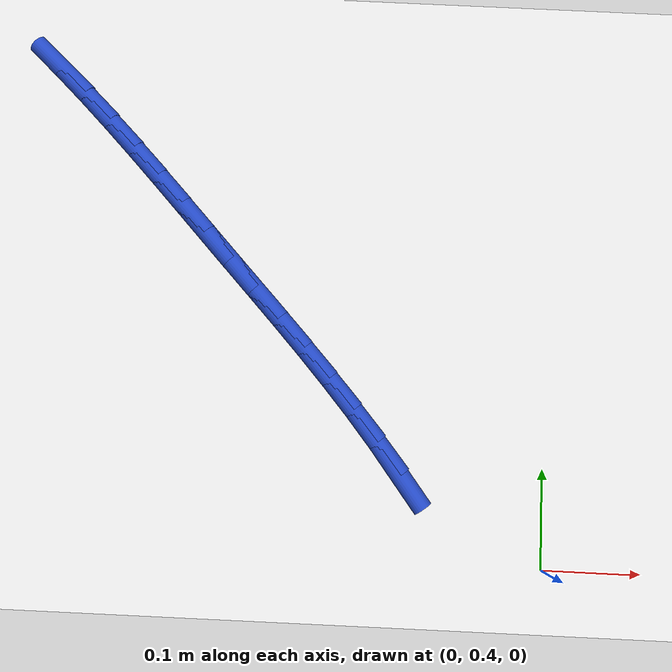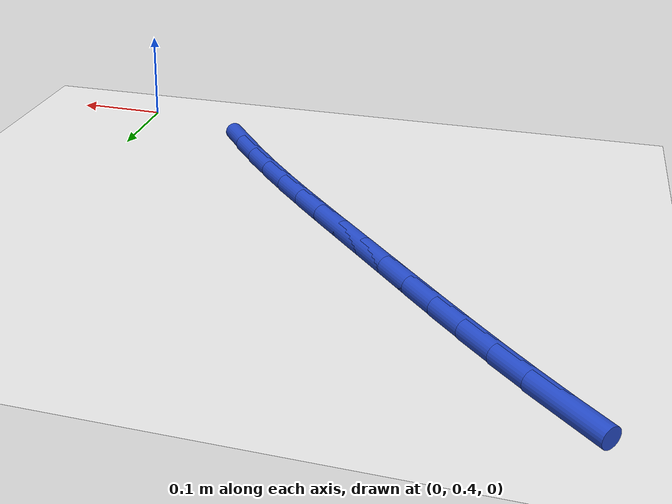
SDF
<sdf version="1.6">
 <world name="default">
  <model name="ground_plane">
   <static>1</static>
   <link name="link">
    <collision name="collision">
     <geometry><plane><normal>0 0 1</normal><size>100 100</size></plane></geometry>
     <surface><friction><ode><mu>100</mu><mu2>50</mu2></ode></friction></surface>
    </collision>
    <visual name="visual">
     <cast_shadows>0</cast_shadows>
     <geometry><plane><normal>0 0 1</normal><size>100 100</size></plane></geometry>
     <material>
      <script><uri>file://media/materials/scripts/gazebo.material</uri><name>Gazebo/WhiteGlow</name></script>
     </material>
    </visual>
   </link>
  </model>
  <model name="line">
   <link name="link_13">
    <pose>-0.14518985217062316 0.4872904489630595 0.01 0 1.57 -0.9235560374310187</pose>
    <collision name="collision">
     <geometry><cylinder><radius>0.01</radius><length>0.08</length></cylinder></geometry>
    </collision>
    <visual name="visual">
     <material>
      <script><name>Gazebo/Blue</name><uri>file://media/materials/scripts/gazebo.material</uri></script>
     </material>
     <geometry><cylinder><radius>0.01</radius><length>0.08</length></cylinder></geometry>
    </visual>
   </link>
   <link name="link_14">
    <pose>-0.16930252687581446 0.5191914741722615 0.01 0 1.57 -0.8915318988918951</pose>
    <collision name="collision">
     <geometry><cylinder><radius>0.01</radius><length>0.08</length></cylinder></geometry>
    </collision>
    <visual name="visual">
     <material>
      <script><name>Gazebo/Blue</name><uri>file://media/materials/scripts/gazebo.material</uri></script>
     </material>
     <geometry><cylinder><radius>0.01</radius><length>0.08</length></cylinder></geometry>
    </visual>
   </link>
   <link name="link_15">
    <pose>-0.1945334963635967 0.5504393653837367 0.01 0 1.57 -0.86547544677018</pose>
    <collision name="collision">
     <geometry><cylinder><radius>0.01</radius><length>0.08</length></cylinder></geometry>
    </collision>
    <visual name="visual">
     <material>
      <script><name>Gazebo/Blue</name><uri>file://media/materials/scripts/gazebo.material</uri></script>
     </material>
     <geometry><cylinder><radius>0.01</radius><length>0.08</length></cylinder></geometry>
    </visual>
   </link>
   <link name="link_16">
    <pose>-0.22065387593070884 0.5811177852950588 0.01 0 1.57 -0.8452090604143787</pose>
    <collision name="collision">
     <geometry><cylinder><radius>0.01</radius><length>0.08</length></cylinder></geometry>
    </collision>
    <visual name="visual">
     <material>
      <script><name>Gazebo/Blue</name><uri>file://media/materials/scripts/gazebo.material</uri></script>
     </material>
     <geometry><cylinder><radius>0.01</radius><length>0.08</length></cylinder></geometry>
    </visual>
   </link>
   <link name="link_17">
    <pose>-0.24743478087389034 0.611310396603802 0.01 0 1.57 -0.8305916437296318</pose>
    <collision name="collision">
     <geometry><cylinder><radius>0.01</radius><length>0.08</length></cylinder></geometry>
    </collision>
    <visual name="visual">
     <material>
      <script><name>Gazebo/Blue</name><uri>file://media/materials/scripts/gazebo.material</uri></script>
     </material>
     <geometry><cylinder><radius>0.01</radius><length>0.08</length></cylinder></geometry>
    </visual>
   </link>
   <link name="link_18">
    <pose>-0.27464732648988033 0.6411008620075409 0.01 0 1.57 -0.8215360327385884</pose>
    <collision name="collision">
     <geometry><cylinder><radius>0.01</radius><length>0.08</length></cylinder></geometry>
    </collision>
    <visual name="visual">
     <material>
      <script><name>Gazebo/Blue</name><uri>file://media/materials/scripts/gazebo.material</uri></script>
     </material>
     <geometry><cylinder><radius>0.01</radius><length>0.08</length></cylinder></geometry>
    </visual>
   </link>
   <link name="link_19">
    <pose>-0.3020626280754181 0.6705728442038488 0.01 0 1.57 -0.8180213803895047</pose>
    <collision name="collision">
     <geometry><cylinder><radius>0.01</radius><length>0.08</length></cylinder></geometry>
    </collision>
    <visual name="visual">
     <material>
      <script><name>Gazebo/Blue</name><uri>file://media/materials/scripts/gazebo.material</uri></script>
     </material>
     <geometry><cylinder><radius>0.01</radius><length>0.08</length></cylinder></geometry>
    </visual>
   </link>
   <link name="link_20">
    <pose>-0.3294518009272429 0.6998100058903001 0.01 0 1.57 -0.8197658720694365</pose>
    <collision name="collision">
     <geometry><cylinder><radius>0.01</radius><length>0.08</length></cylinder></geometry>
    </collision>
    <visual name="visual">
     <material>
      <script><name>Gazebo/Blue</name><uri>file://media/materials/scripts/gazebo.material</uri></script>
     </material>
     <geometry><cylinder><radius>0.01</radius><length>0.08</length></cylinder></geometry>
    </visual>
   </link>
   <link name="link_21">
    <pose>-0.3566011641479202 0.7288926972162735 0.01 0 1.57 -0.8215516015948442</pose>
    <collision name="collision">
     <geometry><cylinder><radius>0.01</radius><length>0.08</length></cylinder></geometry>
    </collision>
    <visual name="visual">
     <material>
      <script><name>Gazebo/Blue</name><uri>file://media/materials/scripts/gazebo.material</uri></script>
     </material>
     <geometry><cylinder><radius>0.01</radius><length>0.08</length></cylinder></geometry>
    </visual>
   </link>
   <link name="link_22">
    <pose>-0.38353610096723917 0.757849181935656 0.01 0 1.57 -0.8191249408894448</pose>
    <collision name="collision">
     <geometry><cylinder><radius>0.01</radius><length>0.08</length></cylinder></geometry>
    </collision>
    <visual name="visual">
     <material>
      <script><name>Gazebo/Blue</name><uri>file://media/materials/scripts/gazebo.material</uri></script>
     </material>
     <geometry><cylinder><radius>0.01</radius><length>0.08</length></cylinder></geometry>
    </visual>
   </link>
   <link name="link_23">
    <pose>-0.4104721297102003 0.7866662978808416 0.01 0 1.57 -0.8123623860567155</pose>
    <collision name="collision">
     <geometry><cylinder><radius>0.01</radius><length>0.08</length></cylinder></geometry>
    </collision>
    <visual name="visual">
     <material>
      <script><name>Gazebo/Blue</name><uri>file://media/materials/scripts/gazebo.material</uri></script>
     </material>
     <geometry><cylinder><radius>0.01</radius><length>0.08</length></cylinder></geometry>
    </visual>
   </link>
   <link name="link_24">
    <pose>-0.43763002555461145 0.8153297375408501 0.01 0 1.57 -0.8013501372681472</pose>
    <collision name="collision">
     <geometry><cylinder><radius>0.01</radius><length>0.08</length></cylinder></geometry>
    </collision>
    <visual name="visual">
     <material>
      <script><name>Gazebo/Blue</name><uri>file://media/materials/scripts/gazebo.material</uri></script>
     </material>
     <geometry><cylinder><radius>0.01</radius><length>0.08</length></cylinder></geometry>
    </visual>
   </link>
   <link name="link_25">
    <pose>-0.46523056367828014 0.843825193404701 0.01 0 1.57 -0.7862679313080547</pose>
    <collision name="collision">
     <geometry><cylinder><radius>0.01</radius><length>0.08</length></cylinder></geometry>
    </collision>
    <visual name="visual">
     <material>
      <script><name>Gazebo/Blue</name><uri>file://media/materials/scripts/gazebo.material</uri></script>
     </material>
     <geometry><cylinder><radius>0.01</radius><length>0.08</length></cylinder></geometry>
    </visual>
   </link>
   <link name="link_26">
    <pose>-0.4934945192590138 0.8721383579614135 0.01 0 1.57 -0.7673857326744724</pose>
    <collision name="collision">
     <geometry><cylinder><radius>0.01</radius><length>0.08</length></cylinder></geometry>
    </collision>
    <visual name="visual">
     <material>
      <script><name>Gazebo/Blue</name><uri>file://media/materials/scripts/gazebo.material</uri></script>
     </material>
     <geometry><cylinder><radius>0.01</radius><length>0.08</length></cylinder></geometry>
    </visual>
   </link>
   <link name="link_27">
    <pose>-0.5226426181322216 0.9002548704224066 0.01 0 1.57 -0.7448752561334837</pose>
    <collision name="collision">
     <geometry><cylinder><radius>0.01</radius><length>0.08</length></cylinder></geometry>
    </collision>
    <visual name="visual">
     <material>
      <script><name>Gazebo/Blue</name><uri>file://media/materials/scripts/gazebo.material</uri></script>
     </material>
     <geometry><cylinder><radius>0.01</radius><length>0.08</length></cylinder></geometry>
    </visual>
   </link>
  </model>
 </world>
</sdf>
